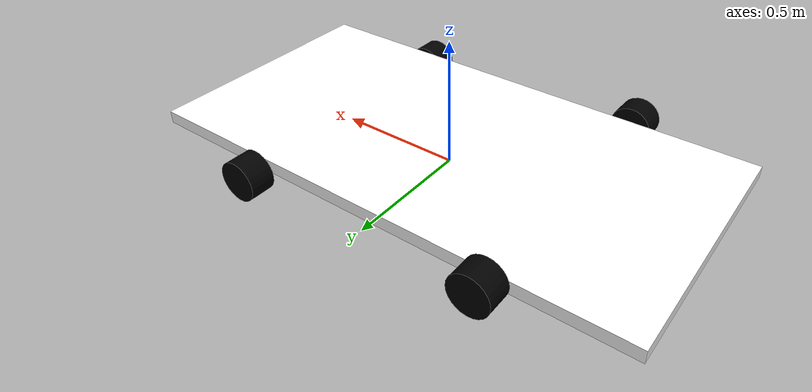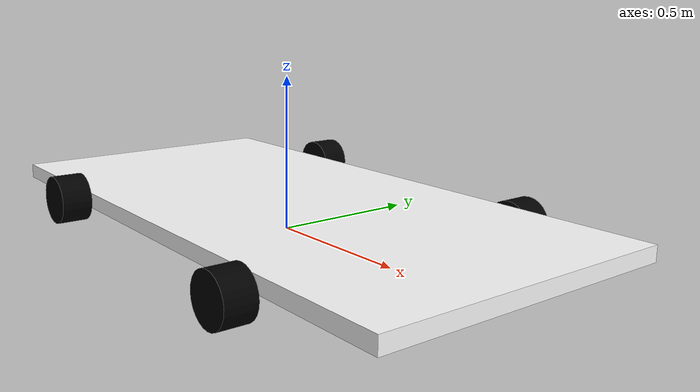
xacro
<?xml version="1.0"?>
<robot name="car" xmlns:xacro="http://www.ros.org/wiki/xacro" >

<xacro:macro name="inertial_matrix" params="mass">
        <inertial>
            <mass value="${mass}" />
                <inertia ixx="50" ixy="0.0" ixz="0.0"
                        iyy="50" iyz="0.0"
                        izz="50" />
        </inertial>
</xacro:macro>

<xacro:macro name="transmission_block" params="joint_name">
	  <transmission name="tran1">
	    <type>transmission_interface/SimpleTransmission</type>
	    <joint name="${joint_name}">
	      <hardwareInterface>VelocityJointInterface</hardwareInterface>
	    </joint>
	    <actuator name="${joint_name}_motor">
	      <hardwareInterface>EffortJointInterface</hardwareInterface>
	      <mechanicalReduction>1</mechanicalReduction>
	    </actuator>
	  </transmission>
</xacro:macro>

    <material name="Black">
        <color rgba="0.0 0.0 0.0 1.0"/>
    </material>
    <material name="Red">
        <color rgba="0.8 0.0 0.0 1.0"/>
    </material>
    <material name="White">
        <color rgba="1.0 1.0 1.0 1.0"/>
    </material>
    <material name="Blue">
        <color rgba="0.0 0.0 0.8 1.0"/>
    </material>
    <material name="yellow">
        <color rgba="1.0 1.0 0.0 1.0"/>
    </material>

    <link name="floor">
        <visual>
            <geometry>
                <box size="0.01 0.01 0.01"/>
            </geometry>
            <origin rpy="0 0 0" xyz="0 0 0" />
            <xacro:inertial_matrix mass="1"/>
        </visual>
    </link>

    <link name="base_link">
        <visual>
            <geometry>
                <box size="2 1 0.05"/>
            </geometry>
            <origin rpy="0 0 0" xyz="0 0 0.08"/>
            <material name="White"/>
        </visual>
        <xacro:inertial_matrix mass="1"/>
        <collision>
            <geometry>
                <box size="2 1 0.05"/>
            </geometry>
            <origin rpy="0 0 0" xyz="0 0 0.08"/>
        </collision>
        <gazebo reference="base_link">
            <material>Gazebo/White</material>
        </gazebo>
    </link>
    <joint name="base" type="fixed">
        <parent link="floor"/>
        <child link="base_link"/>
        <origin rpy="0 0 0" xyz="0 0 0"/>
        <axis rpy="0 0 0" xyz="1 1 0"/>
        <limit effort="100" velocity="100"/>
    </joint>

    <link name="front_right">
        <visual>
            <geometry>
                <cylinder length="0.1" radius="0.08"/>
            </geometry>
            <origin rpy="1.57 0 0" xyz="0 0.05 0"/>
            <material name="Black">
                <color rgba="0.0 0.0 0.0 1.0"/>
            </material>
        </visual>
        <xacro:inertial_matrix mass="0.1"/>
        <collision>
            <geometry>
                <cylinder length="0.1" radius="0.08"/>
            </geometry>
            <origin rpy="1.57 0 0" xyz="0 0.05 0"/>
        </collision>
        <gazebo reference="front_right">
            <material>Black</material>

        </gazebo>
    </link>
    <joint name="front_right_joint" type="revolute">
        <parent link="base_link"/>
        <child link="front_right"/>
        <origin rpy="0 0 0" xyz="-0.5 0.5 0.08"/>
        <axis rpy="0  0" xyz="0 1 0"/>
        <limit effort="100" lower="-0.5" upper="0.5"  velocity="100"/>
    </joint>

    <link name="front_left">
        <visual>
            <geometry>
                <cylinder length="0.1" radius="0.08"/>
            </geometry>
            <origin rpy="1.57 0 0" xyz="0 -0.05 0"/>
            <material name="Black"/>
        </visual>
        <xacro:inertial_matrix mass="0.1"/>
        <collision>
            <geometry>
                <cylinder length="0.1" radius="0.08"/>
            </geometry>
            <origin rpy="1.57 0 0" xyz="0 -0.05 0"/>
        </collision>
    </link>
    <joint name="front_left_joint" type="revolute">
        <parent link="base_link"/>
        <child link="front_left"/>
        <origin rpy="0 0 0" xyz="-0.5 -0.5 0.08"/>
        <axis rpy="0  0" xyz="0 1 0"/>
        <limit effort="100" lower="-0.5" upper="0.5" velocity="100"/>
    </joint>

    <link name="back_right">
        <visual>
            <geometry>
                <cylinder length="0.1" radius="0.08"/>
            </geometry>
            <origin rpy="1.57 0 0" xyz="0 0.05 0"/>
            <material name="Black"/>
        </visual>
        <xacro:inertial_matrix mass="0.1"/>
        <collision>
            <geometry>
                <cylinder length="0.1" radius="0.08"/>
            </geometry>
            <origin rpy="1.57 0 0" xyz="0 0.05 0"/>
        </collision>
    </link>
    <joint name="back_right_joint" type="continuous">
        <parent link="base_link"/>
        <child link="back_right"/>
        <origin rpy="0 0 0" xyz="0.5 0.5 0.04"/>
        <axis rpy="0  0" xyz="0 1 0"/>
        <limit effort="100" velocity="100"/>
    </joint>

    <link name="back_left">
        <visual>
            <geometry>
                <cylinder length="0.1" radius="0.08"/>
            </geometry>
            <origin rpy="1.57 0 0" xyz="0 -0.05 0"/>
            <material name="Black"/>
        </visual>
        <xacro:inertial_matrix mass="0.1"/>
        <collision>
            <geometry>
                <cylinder length="0.1" radius="0.08"/>
            </geometry>
            <origin rpy="1.57 0 0" xyz="0 -0.05 0"/>
        </collision>
    </link>
    <joint name="back_left_joint" type="continuous">
        <parent link="base_link"/>
        <child link="back_left"/>
        <origin rpy="0 0 0" xyz="0.5 -0.5 0.04"/>
        <axis rpy="0  0" xyz="0 1 0"/>
        <limit effort="100" velocity="100"/>
    </joint>

    <xacro:transmission_block joint_name="front_right_joint"/>
    <xacro:transmission_block joint_name="front_left_joint"/>
    <xacro:transmission_block joint_name="back_right_joint"/>
    <xacro:transmission_block joint_name="back_left_joint"/>

    <gazebo>
        <plugin name="gazebo_ros_control" filename= "libgazebo_ros_control.so">
            <robotNamespace>/</robotNamespace>
        </plugin>
    </gazebo>
</robot>
